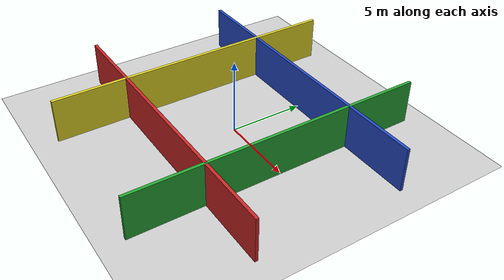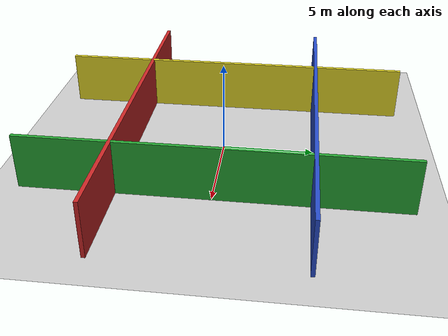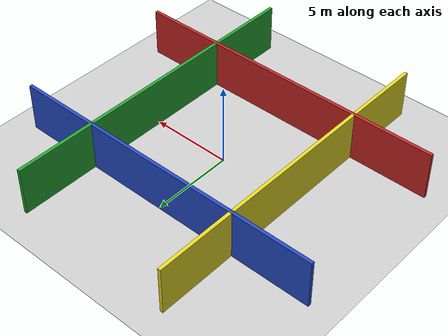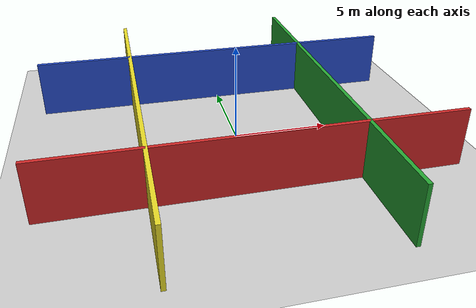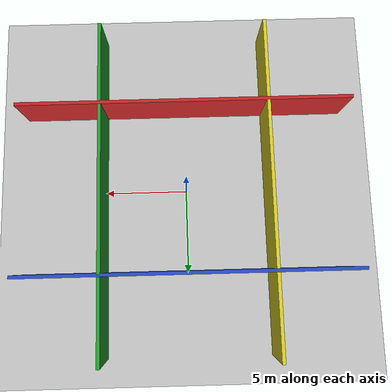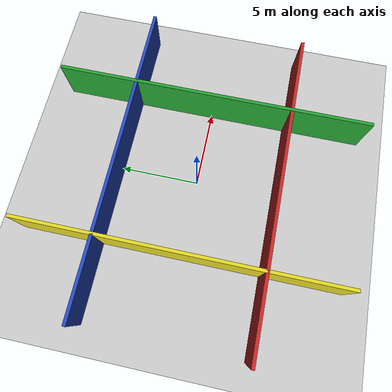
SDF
<?xml version="1.0"?>
<sdf version="1.6">
  <world name="four_walls">

    <!-- Global lighting -->
    <light name="sun" type="directional">
      <cast_shadows>true</cast_shadows>
      <pose>0 0 10 0 0 0</pose>
      <diffuse>0.8 0.8 0.8 1</diffuse>
      <specular>0.2 0.2 0.2 1</specular>
      <attenuation>
        <range>1000</range>
        <constant>0.9</constant>
        <linear>0.01</linear>
        <quadratic>0.001</quadratic>
      </attenuation>
      <direction>-0.5 0.1 -0.9</direction>
    </light>

    <!-- Ground plane -->
    <model name="ground_plane">
      <static>true</static>
      <link name="link">
        <collision name="collision">
          <geometry>
            <plane>
              <normal>0 0 1</normal>
              <size>20 20</size>
            </plane>
          </geometry>
          <surface>
            <friction>
              <ode>
                <mu>100</mu>
                <mu2>50</mu2>
              </ode>
            </friction>
            <bounce/>
            <contact>
              <ode/>
            </contact>
          </surface>
        </collision>
        <visual name="visual">
          <geometry>
            <plane>
              <normal>0 0 1</normal>
              <size>20 20</size>
            </plane>
          </geometry>
          <material>
            <script>
              <uri>file://media/materials/scripts/gazebo.material</uri>
              <name>Gazebo/Grey</name>
            </script>
          </material>
        </visual>
      </link>
    </model>

    <!-- Four walls -->
    <model name="north_wall">
      <static>true</static>
      <pose>0 5 1.5 0 0 0</pose>
      <link name="link">
        <collision name="collision">
          <geometry>
            <box>
              <size>20 0.2 3</size>
            </box>
          </geometry>
        </collision>
        <visual name="visual">
          <geometry>
            <box>
              <size>20 0.2 3</size>
            </box>
          </geometry>
          <material>
            <script>
              <uri>file://media/materials/scripts/gazebo.material</uri>
              <name>Gazebo/Blue</name>
            </script>
          </material>
        </visual>
      </link>
    </model>

    <model name="south_wall">
      <static>true</static>
      <pose>0 -5 1.5 0 0 0</pose>
      <link name="link">
        <collision name="collision">
          <geometry>
            <box>
              <size>20 0.2 3</size>
            </box>
          </geometry>
        </collision>
        <visual name="visual">
          <geometry>
            <box>
              <size>20 0.2 3</size>
            </box>
          </geometry>
          <material>
            <script>
              <uri>file://media/materials/scripts/gazebo.material</uri>
              <name>Gazebo/Red</name>
            </script>
          </material>
        </visual>
      </link>
    </model>

    <model name="east_wall">
      <static>true</static>
      <pose>5 0 1.5 0 0 0</pose>
      <link name="link">
        <collision name="collision">
          <geometry>
            <box>
              <size>0.2 20 3</size>
            </box>
          </geometry>
        </collision>
        <visual name="visual">
          <geometry>
            <box>
              <size>0.2 20 3</size>
            </box>
          </geometry>
          <material>
            <script>
              <uri>file://media/materials/scripts/gazebo.material</uri>
              <name>Gazebo/Green</name>
            </script>
          </material>
        </visual>
      </link>
    </model>

    <model name="west_wall">
      <static>true</static>
      <pose>-5 0 1.5 0 0 0</pose>
      <link name="link">
        <collision name="collision">
          <geometry>
            <box>
              <size>0.2 20 3</size>
            </box>
          </geometry>
        </collision>
        <visual name="visual">
          <geometry>
            <box>
              <size>0.2 20 3</size>
            </box>
          </geometry>
          <material>
            <script>
              <uri>file://media/materials/scripts/gazebo.material</uri>
              <name>Gazebo/Yellow</name>
            </script>
          </material>
        </visual>
      </link>
    </model>

    <!-- Physics parameters -->
    <physics type="ode">
      <max_step_size>0.01</max_step_size>
      <real_time_factor>1</real_time_factor>
      <real_time_update_rate>100</real_time_update_rate>
      <gravity>0 0 -9.8</gravity>
    </physics>

    <!-- GUI options -->
    <gui fullscreen="0">
      <camera name="user_camera">
        <pose>0 0 15 0 0 0</pose>
        <view_controller>orbit</view_controller>
      </camera>
    </gui>

  </world>
</sdf>
